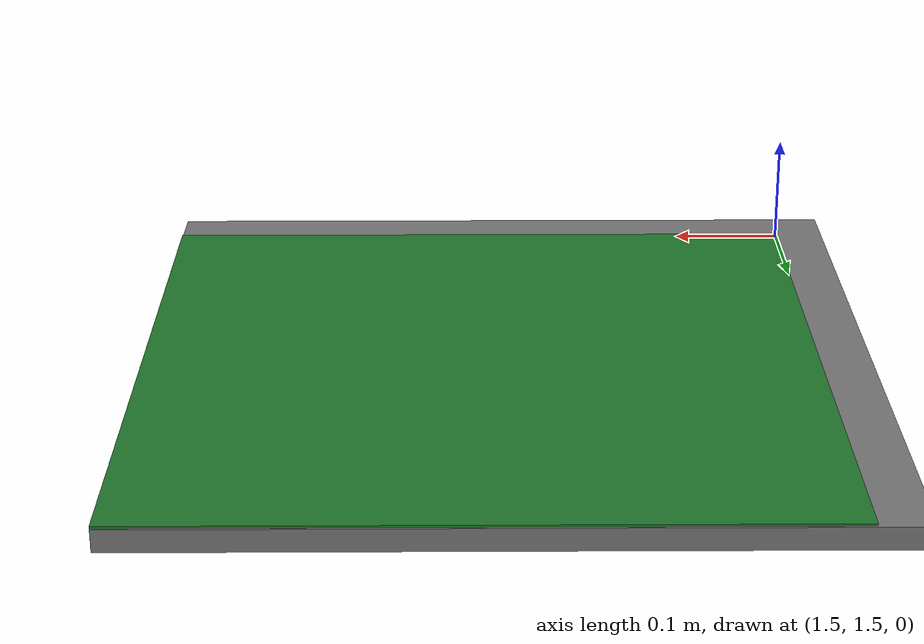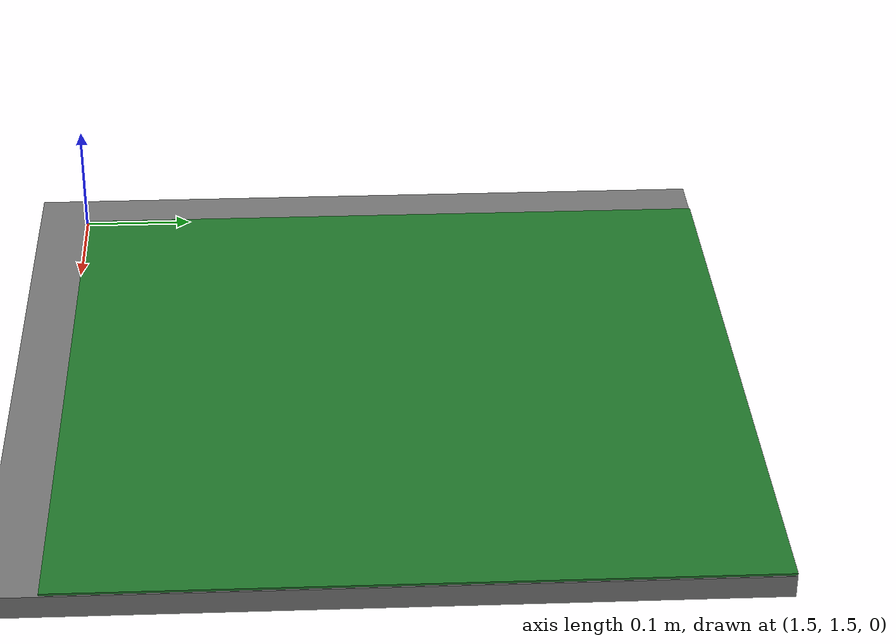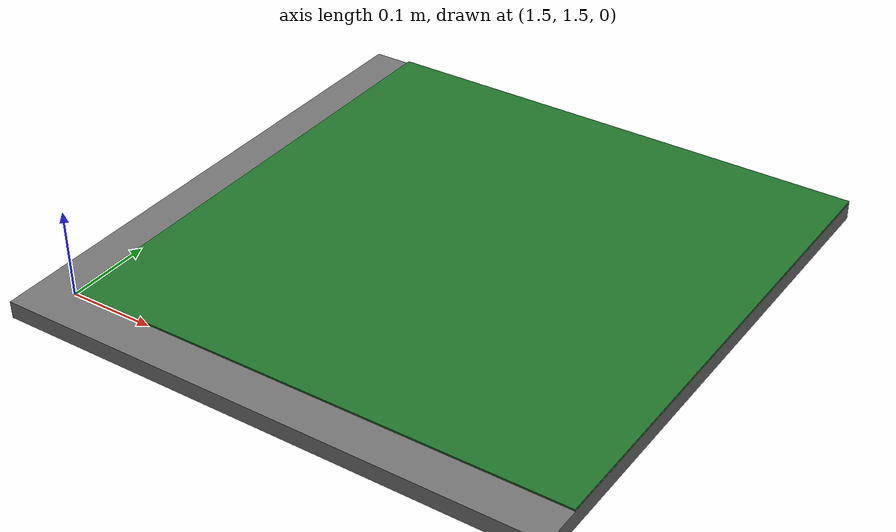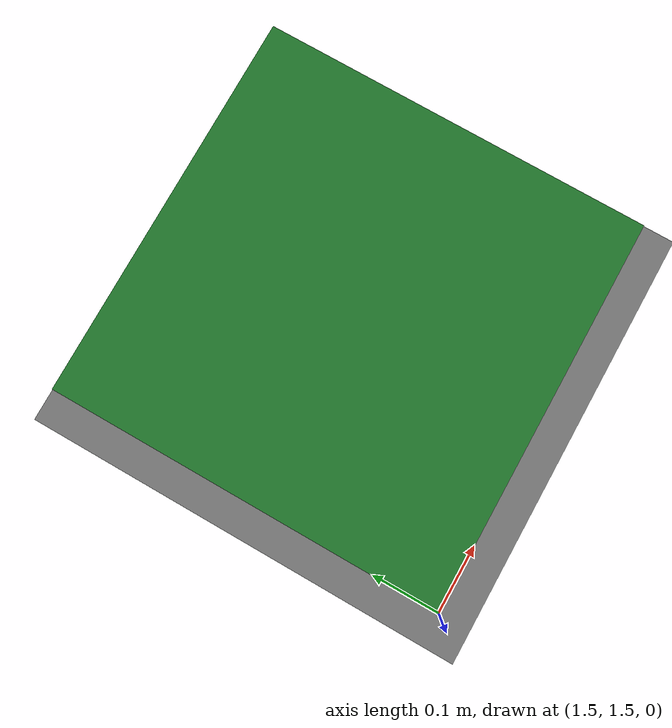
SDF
<?xml version="1.0"?>
<sdf version="1.6">
  <world name="sq_community_4p2_skeleton">
    <include><uri>model://sun</uri></include>
    <gravity>0 0 -9.8</gravity>
    <!-- Physical arena: x/y from -2.1 to +2.1 m. No guessed buildings or lanes. -->
    <model name="arena_floor_4p2">
      <static>true</static>
      <link name="floor">
        <pose>0 0 -0.01 0 0 0</pose>
        <collision name="floor_collision">
          <geometry><box><size>4.2 4.2 0.02</size></box></geometry>
        </collision>
        <visual name="floor_visual">
          <geometry><box><size>4.2 4.2 0.02</size></box></geometry>
          <material><ambient>0.45 0.45 0.45 1</ambient><diffuse>0.45 0.45 0.45 1</diffuse></material>
        </visual>
      </link>
    </model>
    <!-- Geometric marker only: known 0.6 m start area in the upper right. -->
    <model name="start_region_0p6">
      <static>true</static>
      <link name="marker">
        <pose>1.8 1.8 0.002 0 0 0</pose>
        <visual name="start_visual">
          <geometry><box><size>0.6 0.6 0.002</size></box></geometry>
          <material><ambient>0.12 0.45 0.16 1</ambient><diffuse>0.12 0.45 0.16 1</diffuse></material>
        </visual>
      </link>
    </model>
  </world>
</sdf>
